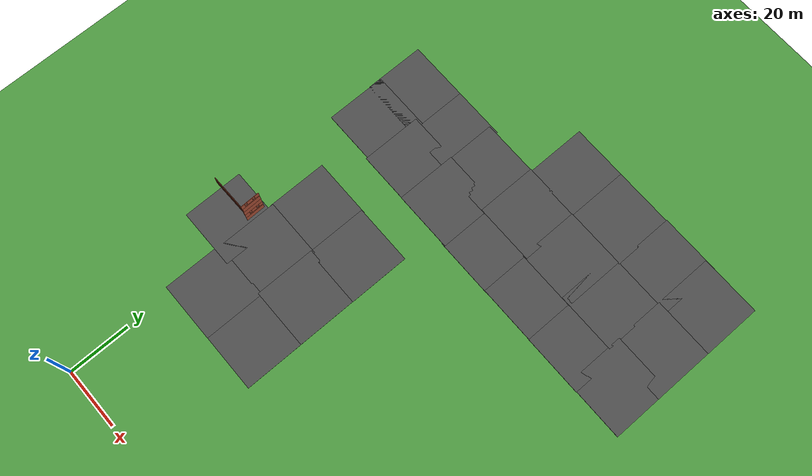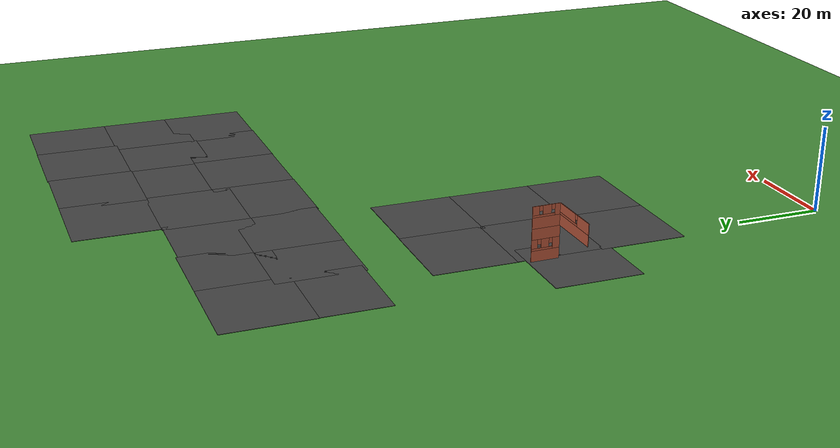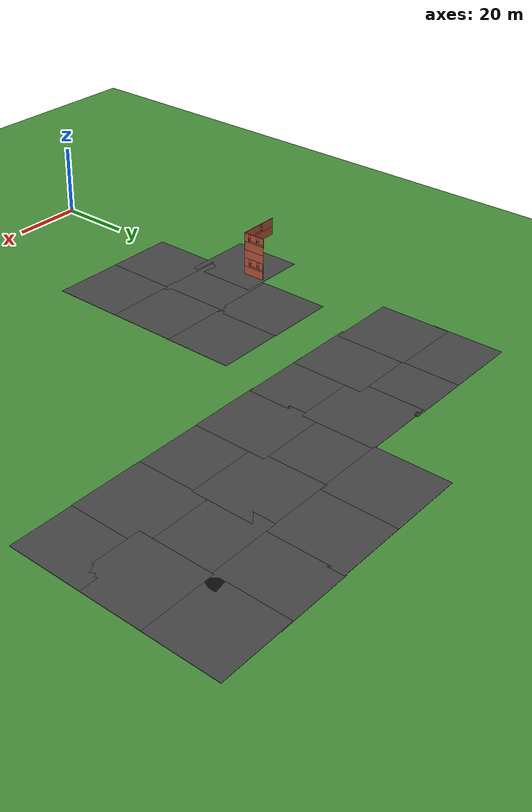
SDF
<sdf version="1.7">
 <world name="default">
  <model name="ground_plane">
   <static>1</static>
   <link name="link">
    <collision name="collision">
     <geometry><plane><normal>0 0 1</normal><size>100 100</size></plane></geometry>
     <surface>
      <contact><collide_bitmask>65535</collide_bitmask></contact>
      <friction><ode><mu>100</mu><mu2>50</mu2></ode></friction>
     </surface>
    </collision>
    <visual name="grass">
     <pose>0 0 -0.1 0 -0 0</pose>
     <cast_shadows>0</cast_shadows>
     <geometry><plane><normal>0 0 1</normal><size>1000 1000</size></plane></geometry>
     <material>
      <script><uri>file://media/materials/scripts/gazebo.material</uri><name>Gazebo/Grass</name></script>
     </material>
    </visual>
   </link>
  </model>
  <model name="asphalt_plane">
   <static>1</static>
   <link name="link">
    <collision name="collision"><geometry><box><size>20 20 0.1</size></box></geometry></collision>
    <visual name="visual">
     <cast_shadows>0</cast_shadows>
     <geometry><box><size>20 20 0.1</size></box></geometry>
     <material>
      <script>
       <uri>model://asphalt_plane/materials/scripts</uri>
       <uri>model://asphalt_plane/materials/textures</uri>
       <name>vrc/asphalt</name>
      </script>
     </material>
    </visual>
   </link>
   <pose>26.7323 45.4974 0 0 -0 0</pose>
  </model>
  <model name="asphalt_plane_0">
   <static>1</static>
   <link name="link">
    <collision name="collision"><geometry><box><size>20 20 0.1</size></box></geometry></collision>
    <visual name="visual">
     <cast_shadows>0</cast_shadows>
     <geometry><box><size>20 20 0.1</size></box></geometry>
     <material>
      <script>
       <uri>model://asphalt_plane/materials/scripts</uri>
       <uri>model://asphalt_plane/materials/textures</uri>
       <name>vrc/asphalt</name>
      </script>
     </material>
    </visual>
   </link>
   <pose>7.64377 45.4686 0 0 -0 0</pose>
  </model>
  <model name="asphalt_plane_7">
   <static>1</static>
   <link name="link">
    <collision name="collision"><geometry><box><size>20 20 0.1</size></box></geometry></collision>
    <visual name="visual">
     <cast_shadows>0</cast_shadows>
     <geometry><box><size>20 20 0.1</size></box></geometry>
     <material>
      <script>
       <uri>model://asphalt_plane/materials/scripts</uri>
       <uri>model://asphalt_plane/materials/textures</uri>
       <name>vrc/asphalt</name>
      </script>
     </material>
    </visual>
   </link>
   <pose>26.7223 64.7037 0 0 -0 0</pose>
  </model>
  <model name="asphalt_plane_8">
   <static>1</static>
   <link name="link">
    <collision name="collision"><geometry><box><size>20 20 0.1</size></box></geometry></collision>
    <visual name="visual">
     <cast_shadows>0</cast_shadows>
     <geometry><box><size>20 20 0.1</size></box></geometry>
     <material>
      <script>
       <uri>model://asphalt_plane/materials/scripts</uri>
       <uri>model://asphalt_plane/materials/textures</uri>
       <name>vrc/asphalt</name>
      </script>
     </material>
    </visual>
   </link>
   <pose>7.97785 65.0899 0 0 -0 0</pose>
  </model>
  <model name="asphalt_plane_9">
   <static>1</static>
   <link name="link">
    <collision name="collision"><geometry><box><size>20 20 0.1</size></box></geometry></collision>
    <visual name="visual">
     <cast_shadows>0</cast_shadows>
     <geometry><box><size>20 20 0.1</size></box></geometry>
     <material>
      <script>
       <uri>model://asphalt_plane/materials/scripts</uri>
       <uri>model://asphalt_plane/materials/textures</uri>
       <name>vrc/asphalt</name>
      </script>
     </material>
    </visual>
   </link>
   <pose>26.7798 84.0663 0 0 -0 0</pose>
  </model>
  <model name="asphalt_plane_10">
   <static>1</static>
   <link name="link">
    <collision name="collision"><geometry><box><size>20 20 0.1</size></box></geometry></collision>
    <visual name="visual">
     <cast_shadows>0</cast_shadows>
     <geometry><box><size>20 20 0.1</size></box></geometry>
     <material>
      <script>
       <uri>model://asphalt_plane/materials/scripts</uri>
       <uri>model://asphalt_plane/materials/textures</uri>
       <name>vrc/asphalt</name>
      </script>
     </material>
    </visual>
   </link>
   <pose>7.87271 84.1708 0 0 -0 0</pose>
  </model>
  <model name="asphalt_plane_11">
   <static>1</static>
   <link name="link">
    <collision name="collision"><geometry><box><size>20 20 0.1</size></box></geometry></collision>
    <visual name="visual">
     <cast_shadows>0</cast_shadows>
     <geometry><box><size>20 20 0.1</size></box></geometry>
     <material>
      <script>
       <uri>model://asphalt_plane/materials/scripts</uri>
       <uri>model://asphalt_plane/materials/textures</uri>
       <name>vrc/asphalt</name>
      </script>
     </material>
    </visual>
   </link>
   <pose>-6.29074 63.3137 0 0 -0 0</pose>
  </model>
  <model name="asphalt_plane_17">
   <static>1</static>
   <link name="link">
    <collision name="collision"><geometry><box><size>20 20 0.1</size></box></geometry></collision>
    <visual name="visual">
     <cast_shadows>0</cast_shadows>
     <geometry><box><size>20 20 0.1</size></box></geometry>
     <material>
      <script>
       <uri>model://asphalt_plane/materials/scripts</uri>
       <uri>model://asphalt_plane/materials/textures</uri>
       <name>vrc/asphalt</name>
      </script>
     </material>
    </visual>
   </link>
   <pose>105.064 115.51 0 0 -0 0</pose>
  </model>
  <model name="asphalt_plane_18">
   <static>1</static>
   <link name="link">
    <collision name="collision"><geometry><box><size>20 20 0.1</size></box></geometry></collision>
    <visual name="visual">
     <cast_shadows>0</cast_shadows>
     <geometry><box><size>20 20 0.1</size></box></geometry>
     <material>
      <script>
       <uri>model://asphalt_plane/materials/scripts</uri>
       <uri>model://asphalt_plane/materials/textures</uri>
       <name>vrc/asphalt</name>
      </script>
     </material>
    </visual>
   </link>
   <pose>88.3923 115.378 0 0 -0 0</pose>
  </model>
  <model name="asphalt_plane_19">
   <static>1</static>
   <link name="link">
    <collision name="collision"><geometry><box><size>20 20 0.1</size></box></geometry></collision>
    <visual name="visual">
     <cast_shadows>0</cast_shadows>
     <geometry><box><size>20 20 0.1</size></box></geometry>
     <material>
      <script>
       <uri>model://asphalt_plane/materials/scripts</uri>
       <uri>model://asphalt_plane/materials/textures</uri>
       <name>vrc/asphalt</name>
      </script>
     </material>
    </visual>
   </link>
   <pose>69.3193 115.45 0 0 -0 0</pose>
  </model>
  <model name="asphalt_plane_20">
   <static>1</static>
   <link name="link">
    <collision name="collision"><geometry><box><size>20 20 0.1</size></box></geometry></collision>
    <visual name="visual">
     <cast_shadows>0</cast_shadows>
     <geometry><box><size>20 20 0.1</size></box></geometry>
     <material>
      <script>
       <uri>model://asphalt_plane/materials/scripts</uri>
       <uri>model://asphalt_plane/materials/textures</uri>
       <name>vrc/asphalt</name>
      </script>
     </material>
    </visual>
   </link>
   <pose>50.3116 115.359 0 0 -0 0</pose>
  </model>
  <model name="asphalt_plane_21">
   <static>1</static>
   <link name="link">
    <collision name="collision"><geometry><box><size>20 20 0.1</size></box></geometry></collision>
    <visual name="visual">
     <cast_shadows>0</cast_shadows>
     <geometry><box><size>20 20 0.1</size></box></geometry>
     <material>
      <script>
       <uri>model://asphalt_plane/materials/scripts</uri>
       <uri>model://asphalt_plane/materials/textures</uri>
       <name>vrc/asphalt</name>
      </script>
     </material>
    </visual>
   </link>
   <pose>50.2162 131.314 0 0 -0 0</pose>
  </model>
  <model name="asphalt_plane_22">
   <static>1</static>
   <link name="link">
    <collision name="collision"><geometry><box><size>20 20 0.1</size></box></geometry></collision>
    <visual name="visual">
     <cast_shadows>0</cast_shadows>
     <geometry><box><size>20 20 0.1</size></box></geometry>
     <material>
      <script>
       <uri>model://asphalt_plane/materials/scripts</uri>
       <uri>model://asphalt_plane/materials/textures</uri>
       <name>vrc/asphalt</name>
      </script>
     </material>
    </visual>
   </link>
   <pose>68.7747 131.061 0 0 -0 0</pose>
  </model>
  <model name="asphalt_plane_23">
   <static>1</static>
   <link name="link">
    <collision name="collision"><geometry><box><size>20 20 0.1</size></box></geometry></collision>
    <visual name="visual">
     <cast_shadows>0</cast_shadows>
     <geometry><box><size>20 20 0.1</size></box></geometry>
     <material>
      <script>
       <uri>model://asphalt_plane/materials/scripts</uri>
       <uri>model://asphalt_plane/materials/textures</uri>
       <name>vrc/asphalt</name>
      </script>
     </material>
    </visual>
   </link>
   <pose>85.642 131.143 0 0 -0 0</pose>
  </model>
  <model name="asphalt_plane_24">
   <static>1</static>
   <link name="link">
    <collision name="collision"><geometry><box><size>20 20 0.1</size></box></geometry></collision>
    <visual name="visual">
     <cast_shadows>0</cast_shadows>
     <geometry><box><size>20 20 0.1</size></box></geometry>
     <material>
      <script>
       <uri>model://asphalt_plane/materials/scripts</uri>
       <uri>model://asphalt_plane/materials/textures</uri>
       <name>vrc/asphalt</name>
      </script>
     </material>
    </visual>
   </link>
   <pose>105.076 131.664 0 0 -0 0</pose>
  </model>
  <model name="asphalt_plane_20_clone">
   <static>1</static>
   <link name="link">
    <collision name="collision"><geometry><box><size>20 20 0.1</size></box></geometry></collision>
    <visual name="visual">
     <cast_shadows>0</cast_shadows>
     <geometry><box><size>20 20 0.1</size></box></geometry>
     <material>
      <script>
       <uri>model://asphalt_plane/materials/scripts</uri>
       <uri>model://asphalt_plane/materials/textures</uri>
       <name>vrc/asphalt</name>
      </script>
     </material>
    </visual>
   </link>
   <pose>31.5151 115.582 0 0 -0 0</pose>
  </model>
  <model name="asphalt_plane_20_clone_0">
   <static>1</static>
   <link name="link">
    <collision name="collision"><geometry><box><size>20 20 0.1</size></box></geometry></collision>
    <visual name="visual">
     <cast_shadows>0</cast_shadows>
     <geometry><box><size>20 20 0.1</size></box></geometry>
     <material>
      <script>
       <uri>model://asphalt_plane/materials/scripts</uri>
       <uri>model://asphalt_plane/materials/textures</uri>
       <name>vrc/asphalt</name>
      </script>
     </material>
    </visual>
   </link>
   <pose>31.7141 131.195 0 0 -0 0</pose>
  </model>
  <model name="asphalt_plane_20_clone_1">
   <static>1</static>
   <link name="link">
    <collision name="collision"><geometry><box><size>20 20 0.1</size></box></geometry></collision>
    <visual name="visual">
     <cast_shadows>0</cast_shadows>
     <geometry><box><size>20 20 0.1</size></box></geometry>
     <material>
      <script>
       <uri>model://asphalt_plane/materials/scripts</uri>
       <uri>model://asphalt_plane/materials/textures</uri>
       <name>vrc/asphalt</name>
      </script>
     </material>
    </visual>
   </link>
   <pose>14.9935 115.666 0 0 -0 0</pose>
  </model>
  <model name="asphalt_plane_20_clone_2">
   <static>1</static>
   <link name="link">
    <collision name="collision"><geometry><box><size>20 20 0.1</size></box></geometry></collision>
    <visual name="visual">
     <cast_shadows>0</cast_shadows>
     <geometry><box><size>20 20 0.1</size></box></geometry>
     <material>
      <script>
       <uri>model://asphalt_plane/materials/scripts</uri>
       <uri>model://asphalt_plane/materials/textures</uri>
       <name>vrc/asphalt</name>
      </script>
     </material>
    </visual>
   </link>
   <pose>14.8414 131.639 0 0 -0 0</pose>
  </model>
  <model name="asphalt_plane_20_clone_3">
   <static>1</static>
   <link name="link">
    <collision name="collision"><geometry><box><size>20 20 0.1</size></box></geometry></collision>
    <visual name="visual">
     <cast_shadows>0</cast_shadows>
     <geometry><box><size>20 20 0.1</size></box></geometry>
     <material>
      <script>
       <uri>model://asphalt_plane/materials/scripts</uri>
       <uri>model://asphalt_plane/materials/textures</uri>
       <name>vrc/asphalt</name>
      </script>
     </material>
    </visual>
   </link>
   <pose>-2.37089 116.179 0 0 -0 0</pose>
  </model>
  <model name="asphalt_plane_20_clone_4">
   <static>1</static>
   <link name="link">
    <collision name="collision"><geometry><box><size>20 20 0.1</size></box></geometry></collision>
    <visual name="visual">
     <cast_shadows>0</cast_shadows>
     <geometry><box><size>20 20 0.1</size></box></geometry>
     <material>
      <script>
       <uri>model://asphalt_plane/materials/scripts</uri>
       <uri>model://asphalt_plane/materials/textures</uri>
       <name>vrc/asphalt</name>
      </script>
     </material>
    </visual>
   </link>
   <pose>-2.52829 131.644 0 0 -0 0</pose>
  </model>
  <model name="asphalt_plane_24_clone">
   <static>1</static>
   <link name="link">
    <collision name="collision"><geometry><box><size>20 20 0.1</size></box></geometry></collision>
    <visual name="visual">
     <cast_shadows>0</cast_shadows>
     <geometry><box><size>20 20 0.1</size></box></geometry>
     <material>
      <script>
       <uri>model://asphalt_plane/materials/scripts</uri>
       <uri>model://asphalt_plane/materials/textures</uri>
       <name>vrc/asphalt</name>
      </script>
     </material>
    </visual>
   </link>
   <pose>105.098 151.021 0 0 -0 0</pose>
  </model>
  <model name="asphalt_plane_24_clone_0">
   <static>1</static>
   <link name="link">
    <collision name="collision"><geometry><box><size>20 20 0.1</size></box></geometry></collision>
    <visual name="visual">
     <cast_shadows>0</cast_shadows>
     <geometry><box><size>20 20 0.1</size></box></geometry>
     <material>
      <script>
       <uri>model://asphalt_plane/materials/scripts</uri>
       <uri>model://asphalt_plane/materials/textures</uri>
       <name>vrc/asphalt</name>
      </script>
     </material>
    </visual>
   </link>
   <pose>88.6654 151.107 0 0 -0 0</pose>
  </model>
  <model name="asphalt_plane_24_clone_1">
   <static>1</static>
   <link name="link">
    <collision name="collision"><geometry><box><size>20 20 0.1</size></box></geometry></collision>
    <visual name="visual">
     <cast_shadows>0</cast_shadows>
     <geometry><box><size>20 20 0.1</size></box></geometry>
     <material>
      <script>
       <uri>model://asphalt_plane/materials/scripts</uri>
       <uri>model://asphalt_plane/materials/textures</uri>
       <name>vrc/asphalt</name>
      </script>
     </material>
    </visual>
   </link>
   <pose>69.2202 150.894 0 0 -0 0</pose>
  </model>
  <model name="asphalt_plane_24_clone_2">
   <static>1</static>
   <link name="link">
    <collision name="collision"><geometry><box><size>20 20 0.1</size></box></geometry></collision>
    <visual name="visual">
     <cast_shadows>0</cast_shadows>
     <geometry><box><size>20 20 0.1</size></box></geometry>
     <material>
      <script>
       <uri>model://asphalt_plane/materials/scripts</uri>
       <uri>model://asphalt_plane/materials/textures</uri>
       <name>vrc/asphalt</name>
      </script>
     </material>
    </visual>
   </link>
   <pose>50.838 150.913 0 0 -0 0</pose>
  </model>
  <model name="my_building_1_clone_1">
   <link name="Wall_18">
    <pose>-4.12557 -6.05 0 0 -0 0</pose>
    <visual name="Wall_18_Visual">
     <pose>0 0 1.25 0 -0 0</pose>
     <geometry><box><size>6.5 0.15 2.5</size></box></geometry>
     <material>
      <script><uri>file://media/materials/scripts/gazebo.material</uri><name>Gazebo/Bricks</name></script>
      <ambient>1 1 1 1</ambient>
      <shader type="pixel"/>
     </material>
     <meta><layer>0</layer></meta>
    </visual>
    <collision name="Wall_18_Collision">
     <pose>0 0 1.25 0 -0 0</pose>
     <geometry><box><size>6.5 0.15 2.5</size></box></geometry>
     <surface>
      <friction>
       <ode><mu>1</mu><mu2>1</mu2><fdir1>0 0 0</fdir1><slip1>0</slip1><slip2>0</slip2></ode>
       <torsional>
        <coefficient>1</coefficient>
        <patch_radius>0</patch_radius>
        <surface_radius>0</surface_radius>
        <use_patch_radius>1</use_patch_radius>
        <ode><slip>0</slip></ode>
       </torsional>
      </friction>
      <bounce><restitution_coefficient>0</restitution_coefficient><threshold>1e+06</threshold></bounce>
      <contact>
       <collide_without_contact>0</collide_without_contact>
       <collide_without_contact_bitmask>1</collide_without_contact_bitmask>
       <collide_bitmask>1</collide_bitmask>
       <ode>
        <soft_cfm>0</soft_cfm>
        <soft_erp>0.2</soft_erp>
        <kp>1e+13</kp>
        <kd>1</kd>
        <max_vel>0.01</max_vel>
        <min_depth>0</min_depth>
       </ode>
       <bullet>
        <split_impulse>1</split_impulse>
        <split_impulse_penetration_threshold>-0.01</split_impulse_penetration_threshold>
        <soft_cfm>0</soft_cfm>
        <soft_erp>0.2</soft_erp>
        <kp>1e+13</kp>
        <kd>1</kd>
       </bullet>
      </contact>
     </surface>
    </collision>
   </link>
   <link name="Wall_75">
    <pose>-4.12557 -6.05 2.5 0 -0 0</pose>
    <visual name="Wall_75_Visual_2">
     <pose>0.117505 0 1.5 0 -0 0</pose>
     <geometry><box><size>1.83342 0.15 2</size></box></geometry>
     <material>
      <script><uri>file://media/materials/scripts/gazebo.material</uri><name>Gazebo/Bricks</name></script>
      <ambient>1 1 1 1</ambient>
      <shader type="pixel"/>
     </material>
     <meta><layer>1</layer></meta>
    </visual>
    <visual name="Wall_75_Visual_5">
     <pose>1.43422 0 1.9 0 -0 0</pose>
     <geometry><box><size>0.8 0.15 1.2</size></box></geometry>
     <material>
      <script><uri>file://media/materials/scripts/gazebo.material</uri><name>Gazebo/Bricks</name></script>
      <ambient>1 1 1 1</ambient>
      <shader type="pixel"/>
     </material>
     <meta><layer>1</layer></meta>
    </visual>
    <visual name="Wall_75_Visual_0">
     <pose>-2.4246 0 1.25 0 -0 0</pose>
     <geometry><box><size>1.6508 0.15 2.5</size></box></geometry>
     <material>
      <script><uri>file://media/materials/scripts/gazebo.material</uri><name>Gazebo/Bricks</name></script>
      <ambient>1 1 1 1</ambient>
      <shader type="pixel"/>
     </material>
     <meta><layer>1</layer></meta>
    </visual>
    <visual name="Wall_75_Visual_4">
     <pose>-1.19921 0 1.9 0 -0 0</pose>
     <geometry><box><size>0.8 0.15 1.2</size></box></geometry>
     <material>
      <script><uri>file://media/materials/scripts/gazebo.material</uri><name>Gazebo/Bricks</name></script>
      <ambient>1 1 1 1</ambient>
      <shader type="pixel"/>
     </material>
     <meta><layer>1</layer></meta>
    </visual>
    <visual name="Wall_75_Visual_3">
     <pose>2.54211 0 1.5 0 -0 0</pose>
     <geometry><box><size>1.41579 0.15 2</size></box></geometry>
     <material>
      <script><uri>file://media/materials/scripts/gazebo.material</uri><name>Gazebo/Bricks</name></script>
      <ambient>1 1 1 1</ambient>
      <shader type="pixel"/>
     </material>
     <meta><layer>1</layer></meta>
    </visual>
    <visual name="Wall_75_Visual_1">
     <pose>0.825397 0 0.25 0 -0 0</pose>
     <geometry><box><size>4.84921 0.15 0.5</size></box></geometry>
     <material>
      <script><uri>file://media/materials/scripts/gazebo.material</uri><name>Gazebo/Bricks</name></script>
      <ambient>1 1 1 1</ambient>
      <shader type="pixel"/>
     </material>
     <meta><layer>1</layer></meta>
    </visual>
    <collision name="Wall_75_Collision_0">
     <pose>-2.4246 0 1.25 0 -0 0</pose>
     <geometry><box><size>1.6508 0.15 2.5</size></box></geometry>
     <surface>
      <friction>
       <ode><mu>1</mu><mu2>1</mu2><fdir1>0 0 0</fdir1><slip1>0</slip1><slip2>0</slip2></ode>
       <torsional>
        <coefficient>1</coefficient>
        <patch_radius>0</patch_radius>
        <surface_radius>0</surface_radius>
        <use_patch_radius>1</use_patch_radius>
        <ode><slip>0</slip></ode>
       </torsional>
      </friction>
      <bounce><restitution_coefficient>0</restitution_coefficient><threshold>1e+06</threshold></bounce>
      <contact>
       <collide_without_contact>0</collide_without_contact>
       <collide_without_contact_bitmask>1</collide_without_contact_bitmask>
       <collide_bitmask>1</collide_bitmask>
       <ode>
        <soft_cfm>0</soft_cfm>
        <soft_erp>0.2</soft_erp>
        <kp>1e+13</kp>
        <kd>1</kd>
        <max_vel>0.01</max_vel>
        <min_depth>0</min_depth>
       </ode>
       <bullet>
        <split_impulse>1</split_impulse>
        <split_impulse_penetration_threshold>-0.01</split_impulse_penetration_threshold>
        <soft_cfm>0</soft_cfm>
        <soft_erp>0.2</soft_erp>
        <kp>1e+13</kp>
        <kd>1</kd>
       </bullet>
      </contact>
     </surface>
    </collision>
    <collision name="Wall_75_Collision_3">
     <pose>2.54211 0 1.5 0 -0 0</pose>
     <geometry><box><size>1.41579 0.15 2</size></box></geometry>
     <surface>
      <friction>
       <ode><mu>1</mu><mu2>1</mu2><fdir1>0 0 0</fdir1><slip1>0</slip1><slip2>0</slip2></ode>
       <torsional>
        <coefficient>1</coefficient>
        <patch_radius>0</patch_radius>
        <surface_radius>0</surface_radius>
        <use_patch_radius>1</use_patch_radius>
        <ode><slip>0</slip></ode>
       </torsional>
      </friction>
      <bounce><restitution_coefficient>0</restitution_coefficient><threshold>1e+06</threshold></bounce>
      <contact>
       <collide_without_contact>0</collide_without_contact>
       <collide_without_contact_bitmask>1</collide_without_contact_bitmask>
       <collide_bitmask>1</collide_bitmask>
       <ode>
        <soft_cfm>0</soft_cfm>
        <soft_erp>0.2</soft_erp>
        <kp>1e+13</kp>
        <kd>1</kd>
        <max_vel>0.01</max_vel>
        <min_depth>0</min_depth>
       </ode>
       <bullet>
        <split_impulse>1</split_impulse>
        <split_impulse_penetration_threshold>-0.01</split_impulse_penetration_threshold>
        <soft_cfm>0</soft_cfm>
        <soft_erp>0.2</soft_erp>
        <kp>1e+13</kp>
        <kd>1</kd>
       </bullet>
      </contact>
     </surface>
    </collision>
    <collision name="Wall_75_Collision_1">
     <pose>0.825397 0 0.25 0 -0 0</pose>
     <geometry><box><size>4.84921 0.15 0.5</size></box></geometry>
     <surface>
      <friction>
       <ode><mu>1</mu><mu2>1</mu2><fdir1>0 0 0</fdir1><slip1>0</slip1><slip2>0</slip2></ode>
       <torsional>
        <coefficient>1</coefficient>
        <patch_radius>0</patch_radius>
        <surface_radius>0</surface_radius>
        <use_patch_radius>1</use_patch_radius>
        <ode><slip>0</slip></ode>
       </torsional>
      </friction>
      <bounce><restitution_coefficient>0</restitution_coefficient><threshold>1e+06</threshold></bounce>
      <contact>
       <collide_without_contact>0</collide_without_contact>
       <collide_without_contact_bitmask>1</collide_without_contact_bitmask>
       <collide_bitmask>1</collide_bitmask>
       <ode>
        <soft_cfm>0</soft_cfm>
        <soft_erp>0.2</soft_erp>
        <kp>1e+13</kp>
        <kd>1</kd>
        <max_vel>0.01</max_vel>
        <min_depth>0</min_depth>
       </ode>
       <bullet>
        <split_impulse>1</split_impulse>
        <split_impulse_penetration_threshold>-0.01</split_impulse_penetration_threshold>
        <soft_cfm>0</soft_cfm>
        <soft_erp>0.2</soft_erp>
        <kp>1e+13</kp>
        <kd>1</kd>
       </bullet>
      </contact>
     </surface>
    </collision>
    <collision name="Wall_75_Collision_5">
     <pose>1.43422 0 1.9 0 -0 0</pose>
     <geometry><box><size>0.8 0.15 1.2</size></box></geometry>
     <surface>
      <friction>
       <ode><mu>1</mu><mu2>1</mu2><fdir1>0 0 0</fdir1><slip1>0</slip1><slip2>0</slip2></ode>
       <torsional>
        <coefficient>1</coefficient>
        <patch_radius>0</patch_radius>
        <surface_radius>0</surface_radius>
        <use_patch_radius>1</use_patch_radius>
        <ode><slip>0</slip></ode>
       </torsional>
      </friction>
      <bounce><restitution_coefficient>0</restitution_coefficient><threshold>1e+06</threshold></bounce>
      <contact>
       <collide_without_contact>0</collide_without_contact>
       <collide_without_contact_bitmask>1</collide_without_contact_bitmask>
       <collide_bitmask>1</collide_bitmask>
       <ode>
        <soft_cfm>0</soft_cfm>
        <soft_erp>0.2</soft_erp>
        <kp>1e+13</kp>
        <kd>1</kd>
        <max_vel>0.01</max_vel>
        <min_depth>0</min_depth>
       </ode>
       <bullet>
        <split_impulse>1</split_impulse>
        <split_impulse_penetration_threshold>-0.01</split_impulse_penetration_threshold>
        <soft_cfm>0</soft_cfm>
        <soft_erp>0.2</soft_erp>
        <kp>1e+13</kp>
        <kd>1</kd>
       </bullet>
      </contact>
     </surface>
    </collision>
    <collision name="Wall_75_Collision_2">
     <pose>0.117505 0 1.5 0 -0 0</pose>
     <geometry><box><size>1.83342 0.15 2</size></box></geometry>
     <surface>
      <friction>
       <ode><mu>1</mu><mu2>1</mu2><fdir1>0 0 0</fdir1><slip1>0</slip1><slip2>0</slip2></ode>
       <torsional>
        <coefficient>1</coefficient>
        <patch_radius>0</patch_radius>
        <surface_radius>0</surface_radius>
        <use_patch_radius>1</use_patch_radius>
        <ode><slip>0</slip></ode>
       </torsional>
      </friction>
      <bounce><restitution_coefficient>0</restitution_coefficient><threshold>1e+06</threshold></bounce>
      <contact>
       <collide_without_contact>0</collide_without_contact>
       <collide_without_contact_bitmask>1</collide_without_contact_bitmask>
       <collide_bitmask>1</collide_bitmask>
       <ode>
        <soft_cfm>0</soft_cfm>
        <soft_erp>0.2</soft_erp>
        <kp>1e+13</kp>
        <kd>1</kd>
        <max_vel>0.01</max_vel>
        <min_depth>0</min_depth>
       </ode>
       <bullet>
        <split_impulse>1</split_impulse>
        <split_impulse_penetration_threshold>-0.01</split_impulse_penetration_threshold>
        <soft_cfm>0</soft_cfm>
        <soft_erp>0.2</soft_erp>
        <kp>1e+13</kp>
        <kd>1</kd>
       </bullet>
      </contact>
     </surface>
    </collision>
    <collision name="Wall_75_Collision_4">
     <pose>-1.19921 0 1.9 0 -0 0</pose>
     <geometry><box><size>0.8 0.15 1.2</size></box></geometry>
     <surface>
      <friction>
       <ode><mu>1</mu><mu2>1</mu2><fdir1>0 0 0</fdir1><slip1>0</slip1><slip2>0</slip2></ode>
       <torsional>
        <coefficient>1</coefficient>
        <patch_radius>0</patch_radius>
        <surface_radius>0</surface_radius>
        <use_patch_radius>1</use_patch_radius>
        <ode><slip>0</slip></ode>
       </torsional>
      </friction>
      <bounce><restitution_coefficient>0</restitution_coefficient><threshold>1e+06</threshold></bounce>
      <contact>
       <collide_without_contact>0</collide_without_contact>
       <collide_without_contact_bitmask>1</collide_without_contact_bitmask>
       <collide_bitmask>1</collide_bitmask>
       <ode>
        <soft_cfm>0</soft_cfm>
        <soft_erp>0.2</soft_erp>
        <kp>1e+13</kp>
        <kd>1</kd>
        <max_vel>0.01</max_vel>
        <min_depth>0</min_depth>
       </ode>
       <bullet>
        <split_impulse>1</split_impulse>
        <split_impulse_penetration_threshold>-0.01</split_impulse_penetration_threshold>
        <soft_cfm>0</soft_cfm>
        <soft_erp>0.2</soft_erp>
        <kp>1e+13</kp>
        <kd>1</kd>
       </bullet>
      </contact>
     </surface>
    </collision>
   </link>
   <link name="Wall_79">
    <pose>-4.12557 -6.05 5 0 -0 0</pose>
    <visual name="Wall_79_Visual">
     <pose>0 0 1.25 0 -0 0</pose>
     <geometry><box><size>6.5 0.15 2.5</size></box></geometry>
     <material>
      <script><uri>file://media/materials/scripts/gazebo.material</uri><name>Gazebo/Bricks</name></script>
      <ambient>1 1 1 1</ambient>
      <shader type="pixel"/>
     </material>
     <meta><layer>2</layer></meta>
    </visual>
    <collision name="Wall_79_Collision">
     <pose>0 0 1.25 0 -0 0</pose>
     <geometry><box><size>6.5 0.15 2.5</size></box></geometry>
     <surface>
      <friction>
       <ode><mu>1</mu><mu2>1</mu2><fdir1>0 0 0</fdir1><slip1>0</slip1><slip2>0</slip2></ode>
       <torsional>
        <coefficient>1</coefficient>
        <patch_radius>0</patch_radius>
        <surface_radius>0</surface_radius>
        <use_patch_radius>1</use_patch_radius>
        <ode><slip>0</slip></ode>
       </torsional>
      </friction>
      <bounce><restitution_coefficient>0</restitution_coefficient><threshold>1e+06</threshold></bounce>
      <contact>
       <collide_without_contact>0</collide_without_contact>
       <collide_without_contact_bitmask>1</collide_without_contact_bitmask>
       <collide_bitmask>1</collide_bitmask>
       <ode>
        <soft_cfm>0</soft_cfm>
        <soft_erp>0.2</soft_erp>
        <kp>1e+13</kp>
        <kd>1</kd>
        <max_vel>0.01</max_vel>
        <min_depth>0</min_depth>
       </ode>
       <bullet>
        <split_impulse>1</split_impulse>
        <split_impulse_penetration_threshold>-0.01</split_impulse_penetration_threshold>
        <soft_cfm>0</soft_cfm>
        <soft_erp>0.2</soft_erp>
        <kp>1e+13</kp>
        <kd>1</kd>
       </bullet>
      </contact>
     </surface>
    </collision>
   </link>
   <link name="Wall_83">
    <pose>-4.12557 -6.05 7.5 0 -0 0</pose>
    <visual name="Wall_83_Visual">
     <pose>0 0 1.25 0 -0 0</pose>
     <geometry><box><size>6.5 0.15 2.5</size></box></geometry>
     <material>
      <script><uri>file://media/materials/scripts/gazebo.material</uri><name>Gazebo/Bricks</name></script>
      <ambient>1 1 1 1</ambient>
      <shader type="pixel"/>
     </material>
     <meta><layer>3</layer></meta>
    </visual>
    <collision name="Wall_83_Collision">
     <pose>0 0 1.25 0 -0 0</pose>
     <geometry><box><size>6.5 0.15 2.5</size></box></geometry>
     <surface>
      <friction>
       <ode><mu>1</mu><mu2>1</mu2><fdir1>0 0 0</fdir1><slip1>0</slip1><slip2>0</slip2></ode>
       <torsional>
        <coefficient>1</coefficient>
        <patch_radius>0</patch_radius>
        <surface_radius>0</surface_radius>
        <use_patch_radius>1</use_patch_radius>
        <ode><slip>0</slip></ode>
       </torsional>
      </friction>
      <bounce><restitution_coefficient>0</restitution_coefficient><threshold>1e+06</threshold></bounce>
      <contact>
       <collide_without_contact>0</collide_without_contact>
       <collide_without_contact_bitmask>1</collide_without_contact_bitmask>
       <collide_bitmask>1</collide_bitmask>
       <ode>
        <soft_cfm>0</soft_cfm>
        <soft_erp>0.2</soft_erp>
        <kp>1e+13</kp>
        <kd>1</kd>
        <max_vel>0.01</max_vel>
        <min_depth>0</min_depth>
       </ode>
       <bullet>
        <split_impulse>1</split_impulse>
        <split_impulse_penetration_threshold>-0.01</split_impulse_penetration_threshold>
        <soft_cfm>0</soft_cfm>
        <soft_erp>0.2</soft_erp>
        <kp>1e+13</kp>
        <kd>1</kd>
       </bullet>
      </contact>
     </surface>
    </collision>
   </link>
   <link name="Wall_86">
    <pose>-7.30057 0 7.5 0 0 -1.5708</pose>
    <visual name="Wall_86_Visual">
     <pose>0 0 1.25 0 -0 0</pose>
     <geometry><box><size>12.25 0.15 2.5</size></box></geometry>
     <material>
      <script><uri>file://media/materials/scripts/gazebo.material</uri><name>Gazebo/Bricks</name></script>
      <ambient>1 1 1 1</ambient>
      <shader type="pixel"/>
     </material>
     <meta><layer>3</layer></meta>
    </visual>
    <collision name="Wall_86_Collision">
     <pose>0 0 1.25 0 -0 0</pose>
     <geometry><box><size>12.25 0.15 2.5</size></box></geometry>
     <surface>
      <friction>
       <ode><mu>1</mu><mu2>1</mu2><fdir1>0 0 0</fdir1><slip1>0</slip1><slip2>0</slip2></ode>
       <torsional>
        <coefficient>1</coefficient>
        <patch_radius>0</patch_radius>
        <surface_radius>0</surface_radius>
        <use_patch_radius>1</use_patch_radius>
        <ode><slip>0</slip></ode>
       </torsional>
      </friction>
      <bounce><restitution_coefficient>0</restitution_coefficient><threshold>1e+06</threshold></bounce>
      <contact>
       <collide_without_contact>0</collide_without_contact>
       <collide_without_contact_bitmask>1</collide_without_contact_bitmask>
       <collide_bitmask>1</collide_bitmask>
       <ode>
        <soft_cfm>0</soft_cfm>
        <soft_erp>0.2</soft_erp>
        <kp>1e+13</kp>
        <kd>1</kd>
        <max_vel>0.01</max_vel>
        <min_depth>0</min_depth>
       </ode>
       <bullet>
        <split_impulse>1</split_impulse>
        <split_impulse_penetration_threshold>-0.01</split_impulse_penetration_threshold>
        <soft_cfm>0</soft_cfm>
        <soft_erp>0.2</soft_erp>
        <kp>1e+13</kp>
        <kd>1</kd>
       </bullet>
      </contact>
     </surface>
    </collision>
   </link>
   <link name="Wall_87">
    <pose>-4.12557 -6.05 10 0 -0 0</pose>
    <visual name="Wall_87_Visual_4">
     <pose>-1.49181 0 1.9 0 -0 0</pose>
     <geometry><box><size>0.8 0.15 1.2</size></box></geometry>
     <material>
      <script><uri>file://media/materials/scripts/gazebo.material</uri><name>Gazebo/Bricks</name></script>
      <ambient>1 1 1 1</ambient>
      <shader type="pixel"/>
     </material>
     <meta><layer>4</layer></meta>
    </visual>
    <visual name="Wall_87_Visual_3">
     <pose>2.46231 0 1.5 0 -0 0</pose>
     <geometry><box><size>1.57539 0.15 2</size></box></geometry>
     <material>
      <script><uri>file://media/materials/scripts/gazebo.material</uri><name>Gazebo/Bricks</name></script>
      <ambient>1 1 1 1</ambient>
      <shader type="pixel"/>
     </material>
     <meta><layer>4</layer></meta>
    </visual>
    <visual name="Wall_87_Visual_0">
     <pose>-2.5709 0 1.25 0 -0 0</pose>
     <geometry><box><size>1.35819 0.15 2.5</size></box></geometry>
     <material>
      <script><uri>file://media/materials/scripts/gazebo.material</uri><name>Gazebo/Bricks</name></script>
      <ambient>1 1 1 1</ambient>
      <shader type="pixel"/>
     </material>
     <meta><layer>4</layer></meta>
    </visual>
    <visual name="Wall_87_Visual_1">
     <pose>0.679097 0 0.25 0 -0 0</pose>
     <geometry><box><size>5.14181 0.15 0.5</size></box></geometry>
     <material>
      <script><uri>file://media/materials/scripts/gazebo.material</uri><name>Gazebo/Bricks</name></script>
      <ambient>1 1 1 1</ambient>
      <shader type="pixel"/>
     </material>
     <meta><layer>4</layer></meta>
    </visual>
    <visual name="Wall_87_Visual_2">
     <pose>-0.108597 0 1.5 0 -0 0</pose>
     <geometry><box><size>1.96642 0.15 2</size></box></geometry>
     <material>
      <script><uri>file://media/materials/scripts/gazebo.material</uri><name>Gazebo/Bricks</name></script>
      <ambient>1 1 1 1</ambient>
      <shader type="pixel"/>
     </material>
     <meta><layer>4</layer></meta>
    </visual>
    <visual name="Wall_87_Visual_5">
     <pose>1.27461 0 1.9 0 -0 0</pose>
     <geometry><box><size>0.8 0.15 1.2</size></box></geometry>
     <material>
      <script><uri>file://media/materials/scripts/gazebo.material</uri><name>Gazebo/Bricks</name></script>
      <ambient>1 1 1 1</ambient>
      <shader type="pixel"/>
     </material>
     <meta><layer>4</layer></meta>
    </visual>
    <collision name="Wall_87_Collision_2">
     <pose>-0.108597 0 1.5 0 -0 0</pose>
     <geometry><box><size>1.96642 0.15 2</size></box></geometry>
     <surface>
      <friction>
       <ode><mu>1</mu><mu2>1</mu2><fdir1>0 0 0</fdir1><slip1>0</slip1><slip2>0</slip2></ode>
       <torsional>
        <coefficient>1</coefficient>
        <patch_radius>0</patch_radius>
        <surface_radius>0</surface_radius>
        <use_patch_radius>1</use_patch_radius>
        <ode><slip>0</slip></ode>
       </torsional>
      </friction>
      <bounce><restitution_coefficient>0</restitution_coefficient><threshold>1e+06</threshold></bounce>
      <contact>
       <collide_without_contact>0</collide_without_contact>
       <collide_without_contact_bitmask>1</collide_without_contact_bitmask>
       <collide_bitmask>1</collide_bitmask>
       <ode>
        <soft_cfm>0</soft_cfm>
        <soft_erp>0.2</soft_erp>
        <kp>1e+13</kp>
        <kd>1</kd>
        <max_vel>0.01</max_vel>
        <min_depth>0</min_depth>
       </ode>
       <bullet>
        <split_impulse>1</split_impulse>
        <split_impulse_penetration_threshold>-0.01</split_impulse_penetration_threshold>
        <soft_cfm>0</soft_cfm>
        <soft_erp>0.2</soft_erp>
        <kp>1e+13</kp>
        <kd>1</kd>
       </bullet>
      </contact>
     </surface>
    </collision>
    <collision name="Wall_87_Collision_3">
     <pose>2.46231 0 1.5 0 -0 0</pose>
     <geometry><box><size>1.57539 0.15 2</size></box></geometry>
     <surface>
      <friction>
       <ode><mu>1</mu><mu2>1</mu2><fdir1>0 0 0</fdir1><slip1>0</slip1><slip2>0</slip2></ode>
       <torsional>
        <coefficient>1</coefficient>
        <patch_radius>0</patch_radius>
        <surface_radius>0</surface_radius>
        <use_patch_radius>1</use_patch_radius>
        <ode><slip>0</slip></ode>
       </torsional>
      </friction>
      <bounce><restitution_coefficient>0</restitution_coefficient><threshold>1e+06</threshold></bounce>
      <contact>
       <collide_without_contact>0</collide_without_contact>
       <collide_without_contact_bitmask>1</collide_without_contact_bitmask>
       <collide_bitmask>1</collide_bitmask>
       <ode>
        <soft_cfm>0</soft_cfm>
        <soft_erp>0.2</soft_erp>
        <kp>1e+13</kp>
        <kd>1</kd>
        <max_vel>0.01</max_vel>
        <min_depth>0</min_depth>
       </ode>
       <bullet>
        <split_impulse>1</split_impulse>
        <split_impulse_penetration_threshold>-0.01</split_impulse_penetration_threshold>
        <soft_cfm>0</soft_cfm>
        <soft_erp>0.2</soft_erp>
        <kp>1e+13</kp>
        <kd>1</kd>
       </bullet>
      </contact>
     </surface>
    </collision>
    <collision name="Wall_87_Collision_0">
     <pose>-2.5709 0 1.25 0 -0 0</pose>
     <geometry><box><size>1.35819 0.15 2.5</size></box></geometry>
     <surface>
      <friction>
       <ode><mu>1</mu><mu2>1</mu2><fdir1>0 0 0</fdir1><slip1>0</slip1><slip2>0</slip2></ode>
       <torsional>
        <coefficient>1</coefficient>
        <patch_radius>0</patch_radius>
        <surface_radius>0</surface_radius>
        <use_patch_radius>1</use_patch_radius>
        <ode><slip>0</slip></ode>
       </torsional>
      </friction>
      <bounce><restitution_coefficient>0</restitution_coefficient><threshold>1e+06</threshold></bounce>
      <contact>
       <collide_without_contact>0</collide_without_contact>
       <collide_without_contact_bitmask>1</collide_without_contact_bitmask>
       <collide_bitmask>1</collide_bitmask>
       <ode>
        <soft_cfm>0</soft_cfm>
        <soft_erp>0.2</soft_erp>
        <kp>1e+13</kp>
        <kd>1</kd>
        <max_vel>0.01</max_vel>
        <min_depth>0</min_depth>
       </ode>
       <bullet>
        <split_impulse>1</split_impulse>
        <split_impulse_penetration_threshold>-0.01</split_impulse_penetration_threshold>
        <soft_cfm>0</soft_cfm>
        <soft_erp>0.2</soft_erp>
        <kp>1e+13</kp>
        <kd>1</kd>
       </bullet>
      </contact>
     </surface>
    </collision>
    <collision name="Wall_87_Collision_5">
     <pose>1.27461 0 1.9 0 -0 0</pose>
     <geometry><box><size>0.8 0.15 1.2</size></box></geometry>
     <surface>
      <friction>
       <ode><mu>1</mu><mu2>1</mu2><fdir1>0 0 0</fdir1><slip1>0</slip1><slip2>0</slip2></ode>
       <torsional>
        <coefficient>1</coefficient>
        <patch_radius>0</patch_radius>
        <surface_radius>0</surface_radius>
        <use_patch_radius>1</use_patch_radius>
        <ode><slip>0</slip></ode>
       </torsional>
      </friction>
      <bounce><restitution_coefficient>0</restitution_coefficient><threshold>1e+06</threshold></bounce>
      <contact>
       <collide_without_contact>0</collide_without_contact>
       <collide_without_contact_bitmask>1</collide_without_contact_bitmask>
       <collide_bitmask>1</collide_bitmask>
       <ode>
        <soft_cfm>0</soft_cfm>
        <soft_erp>0.2</soft_erp>
        <kp>1e+13</kp>
        <kd>1</kd>
        <max_vel>0.01</max_vel>
        <min_depth>0</min_depth>
       </ode>
       <bullet>
        <split_impulse>1</split_impulse>
        <split_impulse_penetration_threshold>-0.01</split_impulse_penetration_threshold>
        <soft_cfm>0</soft_cfm>
        <soft_erp>0.2</soft_erp>
        <kp>1e+13</kp>
        <kd>1</kd>
       </bullet>
      </contact>
     </surface>
    </collision>
    <collision name="Wall_87_Collision_4">
     <pose>-1.49181 0 1.9 0 -0 0</pose>
     <geometry><box><size>0.8 0.15 1.2</size></box></geometry>
     <surface>
      <friction>
       <ode><mu>1</mu><mu2>1</mu2><fdir1>0 0 0</fdir1><slip1>0</slip1><slip2>0</slip2></ode>
       <torsional>
        <coefficient>1</coefficient>
        <patch_radius>0</patch_radius>
        <surface_radius>0</surface_radius>
        <use_patch_radius>1</use_patch_radius>
        <ode><slip>0</slip></ode>
       </torsional>
      </friction>
      <bounce><restitution_coefficient>0</restitution_coefficient><threshold>1e+06</threshold></bounce>
      <contact>
       <collide_without_contact>0</collide_without_contact>
       <collide_without_contact_bitmask>1</collide_without_contact_bitmask>
       <collide_bitmask>1</collide_bitmask>
       <ode>
        <soft_cfm>0</soft_cfm>
        <soft_erp>0.2</soft_erp>
        <kp>1e+13</kp>
        <kd>1</kd>
        <max_vel>0.01</max_vel>
        <min_depth>0</min_depth>
       </ode>
       <bullet>
        <split_impulse>1</split_impulse>
        <split_impulse_penetration_threshold>-0.01</split_impulse_penetration_threshold>
        <soft_cfm>0</soft_cfm>
        <soft_erp>0.2</soft_erp>
        <kp>1e+13</kp>
        <kd>1</kd>
       </bullet>
      </contact>
     </surface>
    </collision>
    <collision name="Wall_87_Collision_1">
     <pose>0.679097 0 0.25 0 -0 0</pose>
     <geometry><box><size>5.14181 0.15 0.5</size></box></geometry>
     <surface>
      <friction>
       <ode><mu>1</mu><mu2>1</mu2><fdir1>0 0 0</fdir1><slip1>0</slip1><slip2>0</slip2></ode>
       <torsional>
        <coefficient>1</coefficient>
        <patch_radius>0</patch_radius>
        <surface_radius>0</surface_radius>
        <use_patch_radius>1</use_patch_radius>
        <ode><slip>0</slip></ode>
       </torsional>
      </friction>
      <bounce><restitution_coefficient>0</restitution_coefficient><threshold>1e+06</threshold></bounce>
      <contact>
       <collide_without_contact>0</collide_without_contact>
       <collide_without_contact_bitmask>1</collide_without_contact_bitmask>
       <collide_bitmask>1</collide_bitmask>
       <ode>
        <soft_cfm>0</soft_cfm>
        <soft_erp>0.2</soft_erp>
        <kp>1e+13</kp>
        <kd>1</kd>
        <max_vel>0.01</max_vel>
        <min_depth>0</min_depth>
       </ode>
       <bullet>
        <split_impulse>1</split_impulse>
        <split_impulse_penetration_threshold>-0.01</split_impulse_penetration_threshold>
        <soft_cfm>0</soft_cfm>
        <soft_erp>0.2</soft_erp>
        <kp>1e+13</kp>
        <kd>1</kd>
       </bullet>
      </contact>
     </surface>
    </collision>
   </link>
   <link name="Wall_90">
    <pose>-7.30057 0 10 0 0 -1.5708</pose>
    <visual name="Wall_90_Visual_1">
     <pose>2.39424 0 0.25 0 -0 0</pose>
     <geometry><box><size>7.46151 0.15 0.5</size></box></geometry>
     <material>
      <script><uri>file://media/materials/scripts/gazebo.material</uri><name>Gazebo/Bricks</name></script>
      <ambient>1 1 1 1</ambient>
      <shader type="pixel"/>
     </material>
     <meta><layer>4</layer></meta>
    </visual>
    <visual name="Wall_90_Visual_0">
     <pose>-3.73076 0 1.25 0 -0 0</pose>
     <geometry><box><size>4.78849 0.15 2.5</size></box></geometry>
     <material>
      <script><uri>file://media/materials/scripts/gazebo.material</uri><name>Gazebo/Bricks</name></script>
      <ambient>1 1 1 1</ambient>
      <shader type="pixel"/>
     </material>
     <meta><layer>4</layer></meta>
    </visual>
    <visual name="Wall_90_Visual_3">
     <pose>-0.936514 0 1.9 0 -0 0</pose>
     <geometry><box><size>0.8 0.15 1.2</size></box></geometry>
     <material>
      <script><uri>file://media/materials/scripts/gazebo.material</uri><name>Gazebo/Bricks</name></script>
      <ambient>1 1 1 1</ambient>
      <shader type="pixel"/>
     </material>
     <meta><layer>4</layer></meta>
    </visual>
    <visual name="Wall_90_Visual_2">
     <pose>2.79424 0 1.5 0 -0 0</pose>
     <geometry><box><size>6.66151 0.15 2</size></box></geometry>
     <material>
      <script><uri>file://media/materials/scripts/gazebo.material</uri><name>Gazebo/Bricks</name></script>
      <ambient>1 1 1 1</ambient>
      <shader type="pixel"/>
     </material>
     <meta><layer>4</layer></meta>
    </visual>
    <collision name="Wall_90_Collision_0">
     <pose>-3.73076 0 1.25 0 -0 0</pose>
     <geometry><box><size>4.78849 0.15 2.5</size></box></geometry>
     <surface>
      <friction>
       <ode><mu>1</mu><mu2>1</mu2><fdir1>0 0 0</fdir1><slip1>0</slip1><slip2>0</slip2></ode>
       <torsional>
        <coefficient>1</coefficient>
        <patch_radius>0</patch_radius>
        <surface_radius>0</surface_radius>
        <use_patch_radius>1</use_patch_radius>
        <ode><slip>0</slip></ode>
       </torsional>
      </friction>
      <bounce><restitution_coefficient>0</restitution_coefficient><threshold>1e+06</threshold></bounce>
      <contact>
       <collide_without_contact>0</collide_without_contact>
       <collide_without_contact_bitmask>1</collide_without_contact_bitmask>
       <collide_bitmask>1</collide_bitmask>
       <ode>
        <soft_cfm>0</soft_cfm>
        <soft_erp>0.2</soft_erp>
        <kp>1e+13</kp>
        <kd>1</kd>
        <max_vel>0.01</max_vel>
        <min_depth>0</min_depth>
       </ode>
       <bullet>
        <split_impulse>1</split_impulse>
        <split_impulse_penetration_threshold>-0.01</split_impulse_penetration_threshold>
        <soft_cfm>0</soft_cfm>
        <soft_erp>0.2</soft_erp>
        <kp>1e+13</kp>
        <kd>1</kd>
       </bullet>
      </contact>
     </surface>
    </collision>
    <collision name="Wall_90_Collision_1">
     <pose>2.39424 0 0.25 0 -0 0</pose>
     <geometry><box><size>7.46151 0.15 0.5</size></box></geometry>
     <surface>
      <friction>
       <ode><mu>1</mu><mu2>1</mu2><fdir1>0 0 0</fdir1><slip1>0</slip1><slip2>0</slip2></ode>
       <torsional>
        <coefficient>1</coefficient>
        <patch_radius>0</patch_radius>
        <surface_radius>0</surface_radius>
        <use_patch_radius>1</use_patch_radius>
        <ode><slip>0</slip></ode>
       </torsional>
      </friction>
      <bounce><restitution_coefficient>0</restitution_coefficient><threshold>1e+06</threshold></bounce>
      <contact>
       <collide_without_contact>0</collide_without_contact>
       <collide_without_contact_bitmask>1</collide_without_contact_bitmask>
       <collide_bitmask>1</collide_bitmask>
       <ode>
        <soft_cfm>0</soft_cfm>
        <soft_erp>0.2</soft_erp>
        <kp>1e+13</kp>
        <kd>1</kd>
        <max_vel>0.01</max_vel>
        <min_depth>0</min_depth>
       </ode>
       <bullet>
        <split_impulse>1</split_impulse>
        <split_impulse_penetration_threshold>-0.01</split_impulse_penetration_threshold>
        <soft_cfm>0</soft_cfm>
        <soft_erp>0.2</soft_erp>
        <kp>1e+13</kp>
        <kd>1</kd>
       </bullet>
      </contact>
     </surface>
    </collision>
    <collision name="Wall_90_Collision_2">
     <pose>2.79424 0 1.5 0 -0 0</pose>
     <geometry><box><size>6.66151 0.15 2</size></box></geometry>
     <surface>
      <friction>
       <ode><mu>1</mu><mu2>1</mu2><fdir1>0 0 0</fdir1><slip1>0</slip1><slip2>0</slip2></ode>
       <torsional>
        <coefficient>1</coefficient>
        <patch_radius>0</patch_radius>
        <surface_radius>0</surface_radius>
        <use_patch_radius>1</use_patch_radius>
        <ode><slip>0</slip></ode>
       </torsional>
      </friction>
      <bounce><restitution_coefficient>0</restitution_coefficient><threshold>1e+06</threshold></bounce>
      <contact>
       <collide_without_contact>0</collide_without_contact>
       <collide_without_contact_bitmask>1</collide_without_contact_bitmask>
       <collide_bitmask>1</collide_bitmask>
       <ode>
        <soft_cfm>0</soft_cfm>
        <soft_erp>0.2</soft_erp>
        <kp>1e+13</kp>
        <kd>1</kd>
        <max_vel>0.01</max_vel>
        <min_depth>0</min_depth>
       </ode>
       <bullet>
        <split_impulse>1</split_impulse>
        <split_impulse_penetration_threshold>-0.01</split_impulse_penetration_threshold>
        <soft_cfm>0</soft_cfm>
        <soft_erp>0.2</soft_erp>
        <kp>1e+13</kp>
        <kd>1</kd>
       </bullet>
      </contact>
     </surface>
    </collision>
    <collision name="Wall_90_Collision_3">
     <pose>-0.936514 0 1.9 0 -0 0</pose>
     <geometry><box><size>0.8 0.15 1.2</size></box></geometry>
     <surface>
      <friction>
       <ode><mu>1</mu><mu2>1</mu2><fdir1>0 0 0</fdir1><slip1>0</slip1><slip2>0</slip2></ode>
       <torsional>
        <coefficient>1</coefficient>
        <patch_radius>0</patch_radius>
        <surface_radius>0</surface_radius>
        <use_patch_radius>1</use_patch_radius>
        <ode><slip>0</slip></ode>
       </torsional>
      </friction>
      <bounce><restitution_coefficient>0</restitution_coefficient><threshold>1e+06</threshold></bounce>
      <contact>
       <collide_without_contact>0</collide_without_contact>
       <collide_without_contact_bitmask>1</collide_without_contact_bitmask>
       <collide_bitmask>1</collide_bitmask>
       <ode>
        <soft_cfm>0</soft_cfm>
        <soft_erp>0.2</soft_erp>
        <kp>1e+13</kp>
        <kd>1</kd>
        <max_vel>0.01</max_vel>
        <min_depth>0</min_depth>
       </ode>
       <bullet>
        <split_impulse>1</split_impulse>
        <split_impulse_penetration_threshold>-0.01</split_impulse_penetration_threshold>
        <soft_cfm>0</soft_cfm>
        <soft_erp>0.2</soft_erp>
        <kp>1e+13</kp>
        <kd>1</kd>
       </bullet>
      </contact>
     </surface>
    </collision>
   </link>
   <static>1</static>
   <pose>-9.16053 73.4537 0 0 -0 1.58902</pose>
  </model>
 </world>
</sdf>
